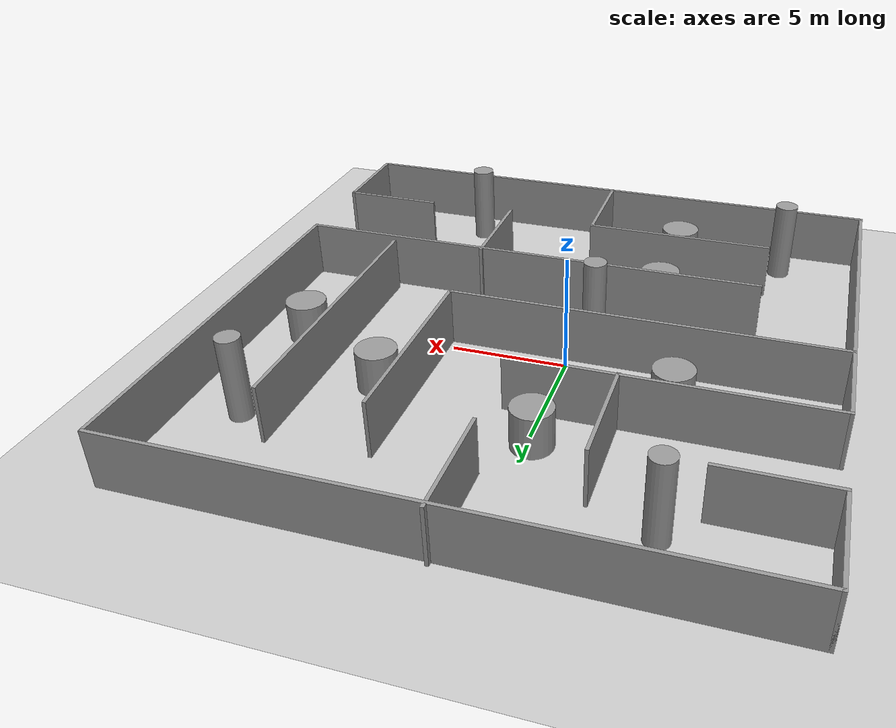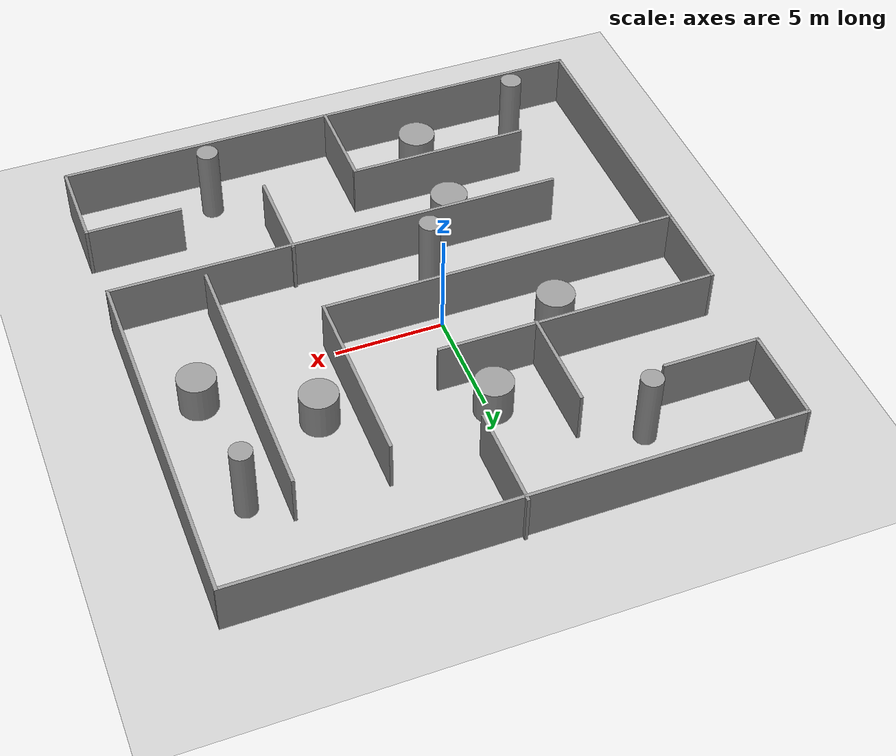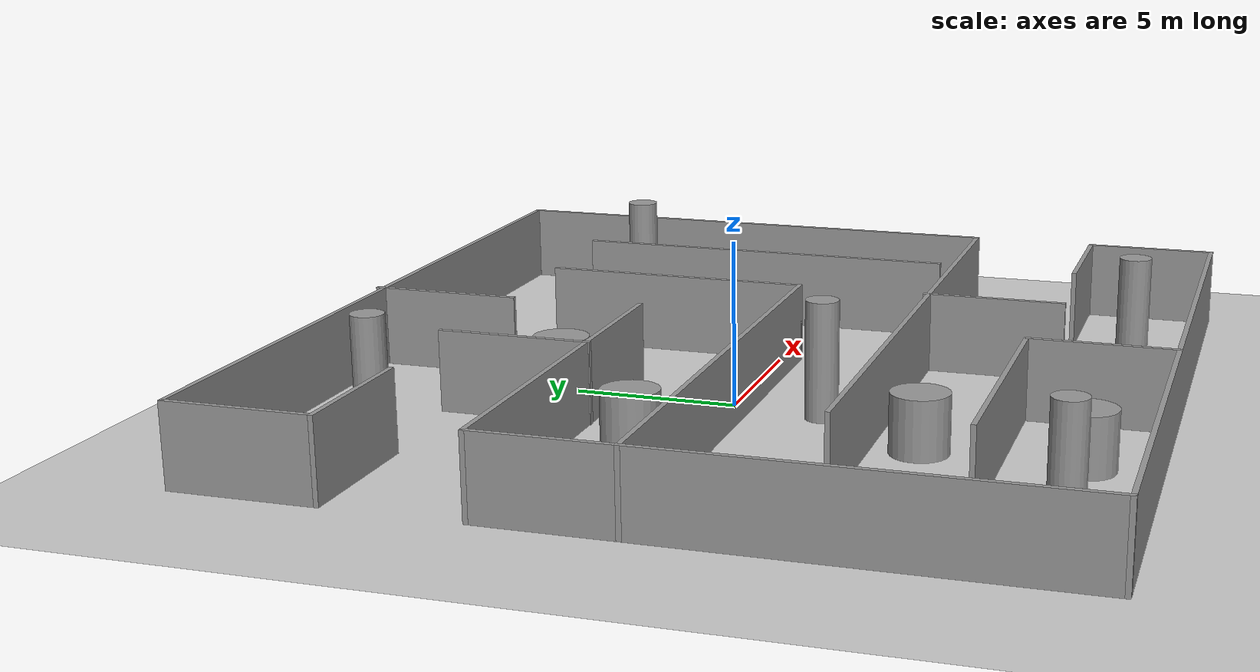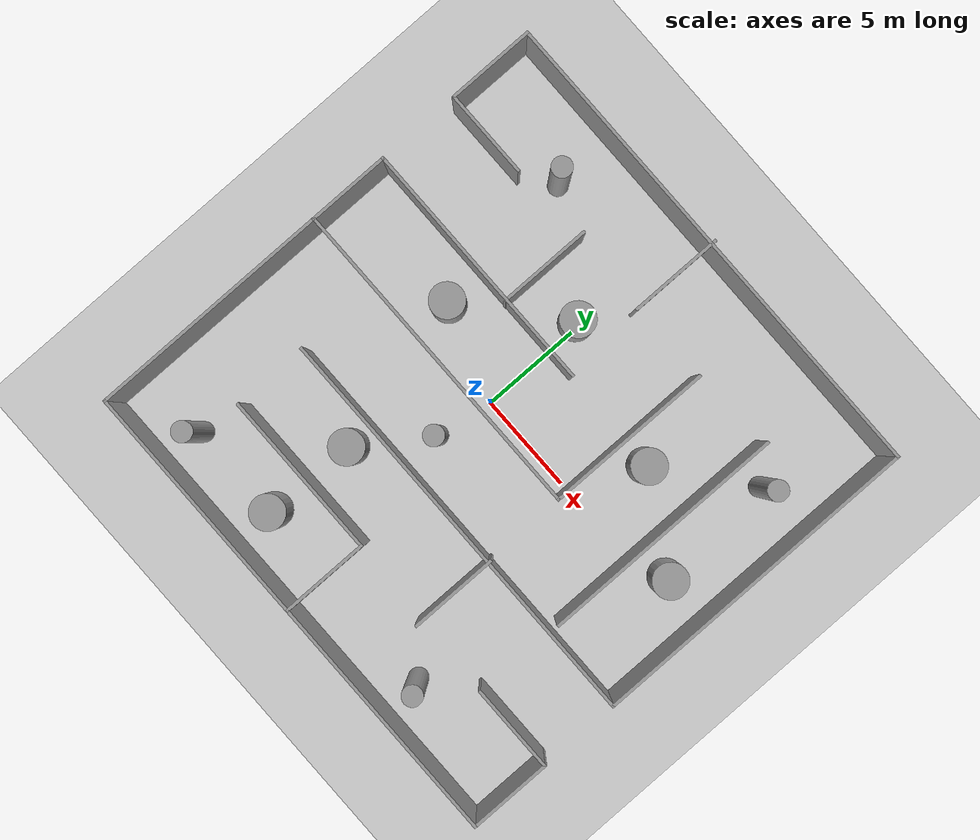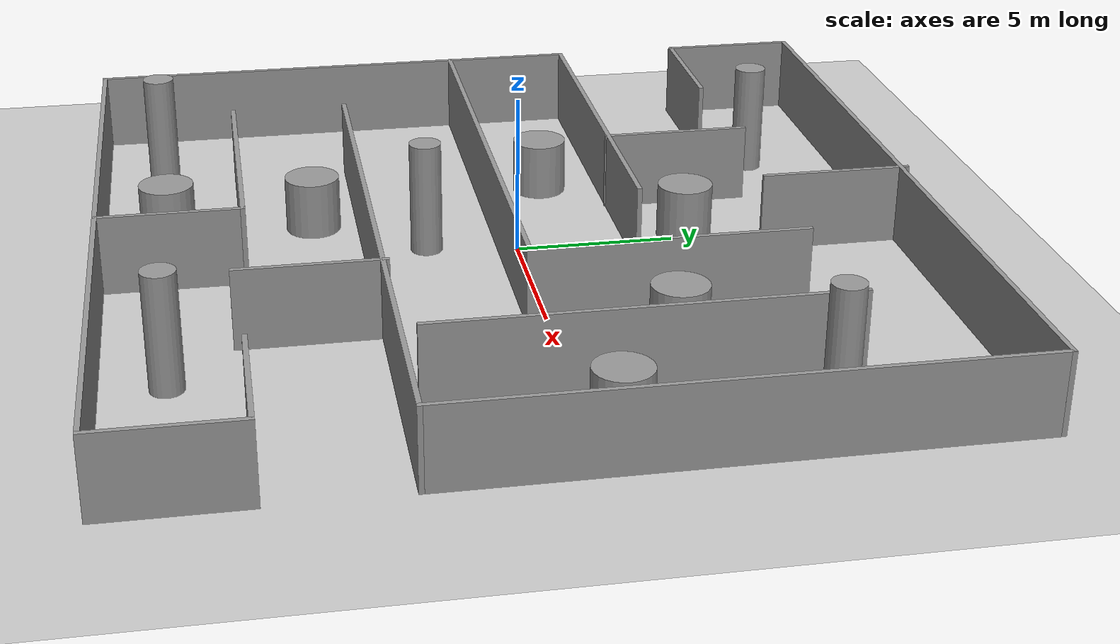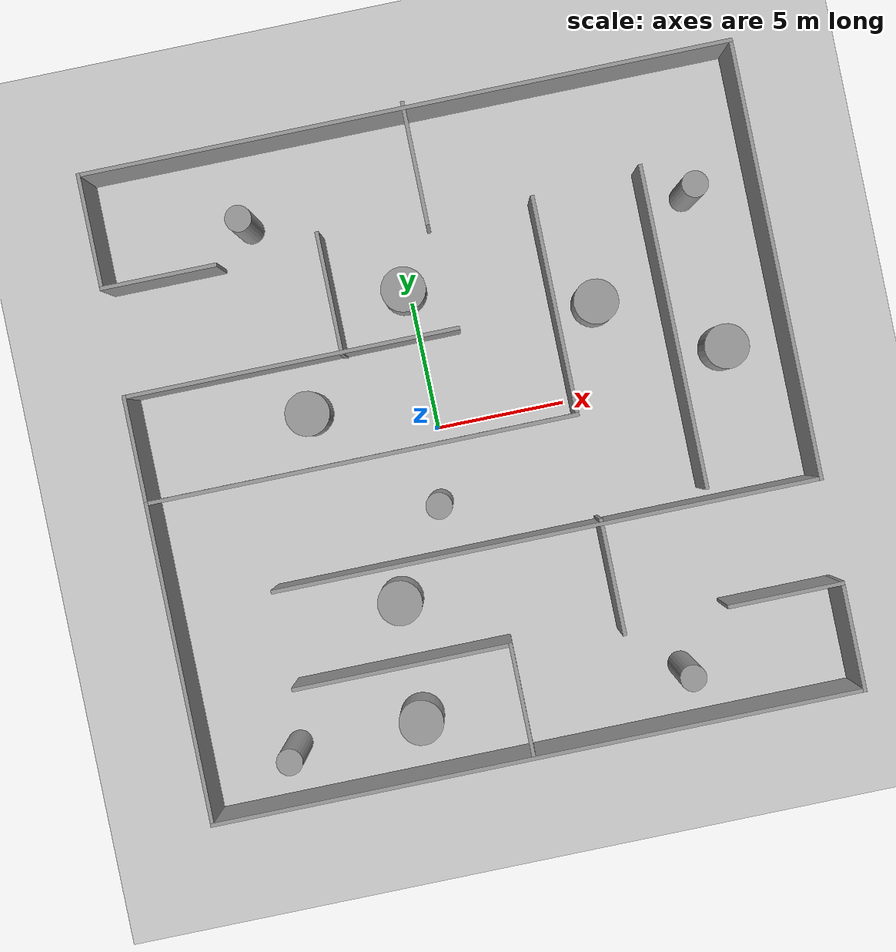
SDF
<sdf version="1.7">
 <world name="default">
  <model name="ground_plane">
   <static>1</static>
   <link name="link">
    <collision name="collision">
     <geometry><plane><normal>0 0 1</normal><size>100 100</size></plane></geometry>
     <surface>
      <contact><collide_bitmask>65535</collide_bitmask></contact>
      <friction><ode><mu>100</mu><mu2>50</mu2></ode></friction>
     </surface>
    </collision>
    <visual name="visual">
     <cast_shadows>0</cast_shadows>
     <geometry><plane><normal>0 0 1</normal><size>100 100</size></plane></geometry>
     <material>
      <script><uri>file://media/materials/scripts/gazebo.material</uri><name>Gazebo/Grey</name></script>
     </material>
    </visual>
   </link>
  </model>
  <light name="sun" type="directional">
   <pose>0 0 10 0 -0 0</pose>
   <diffuse>0.8 0.8 0.8 1</diffuse>
   <specular>0.2 0.2 0.2 1</specular>
   <attenuation>
    <range>1000</range>
    <constant>0.9</constant>
    <linear>0.01</linear>
    <quadratic>0.001</quadratic>
   </attenuation>
   <direction>-0.5 0.1 -0.9</direction>
   <spot><inner_angle>0</inner_angle><outer_angle>0</outer_angle><falloff>0</falloff></spot>
  </light>
  <gravity>0 0 -9.8</gravity>
  <magnetic_field>6e-06 2.3e-05 -4.2e-05</magnetic_field>
  <atmosphere type="adiabatic"/>
  <physics type="ode">
   <max_step_size>0.001</max_step_size>
   <real_time_factor>1</real_time_factor>
   <real_time_update_rate>1000</real_time_update_rate>
  </physics>
  <scene><ambient>0.4 0.4 0.4 1</ambient><background>0.7 0.7 0.7 1</background><shadows>1</shadows></scene>
  <spherical_coordinates>
   <surface_model>EARTH_WGS84</surface_model>
   <latitude_deg>0</latitude_deg>
   <longitude_deg>0</longitude_deg>
   <elevation>0</elevation>
   <heading_deg>0</heading_deg>
  </spherical_coordinates>
  <model name="maze4">
   <pose>1.24134 -0.336764 0 0 -0 0</pose>
   <link name="Wall_186">
    <collision name="Wall_186_Collision">
     <geometry><box><size>4.5 0.15 2.5</size></box></geometry>
     <pose>0 0 1.25 0 -0 0</pose>
    </collision>
    <visual name="Wall_186_Visual">
     <pose>0 0 1.25 0 -0 0</pose>
     <geometry><box><size>4.5 0.15 2.5</size></box></geometry>
     <material>
      <script><uri>file://media/materials/scripts/gazebo.material</uri><name>Gazebo/Grey</name></script>
      <ambient>1 1 1 1</ambient>
     </material>
     <meta><layer>0</layer></meta>
    </visual>
    <pose>-10.3717 8.05219 0 0 -0 3.14159</pose>
   </link>
   <link name="Wall_187">
    <collision name="Wall_187_Collision">
     <geometry><box><size>4.5 0.15 2.5</size></box></geometry>
     <pose>0 0 1.25 0 -0 0</pose>
    </collision>
    <visual name="Wall_187_Visual">
     <pose>0 0 1.25 0 -0 0</pose>
     <geometry><box><size>4.5 0.15 2.5</size></box></geometry>
     <material>
      <script><uri>file://media/materials/scripts/gazebo.material</uri><name>Gazebo/Grey</name></script>
      <ambient>1 1 1 1</ambient>
     </material>
     <meta><layer>0</layer></meta>
    </visual>
    <pose>-12.5467 10.2272 0 0 -0 1.5708</pose>
   </link>
   <link name="Wall_188">
    <collision name="Wall_188_Collision">
     <geometry><box><size>25.25 0.15 2.5</size></box></geometry>
     <pose>0 0 1.25 0 -0 0</pose>
    </collision>
    <visual name="Wall_188_Visual">
     <pose>0 0 1.25 0 -0 0</pose>
     <geometry><box><size>25.25 0.15 2.5</size></box></geometry>
     <material>
      <script><uri>file://media/materials/scripts/gazebo.material</uri><name>Gazebo/Grey</name></script>
      <ambient>1 1 1 1</ambient>
     </material>
     <meta><layer>0</layer></meta>
    </visual>
    <pose>0.003348 12.4022 0 0 -0 0</pose>
   </link>
   <link name="Wall_189">
    <collision name="Wall_189_Collision">
     <geometry><box><size>17 0.15 2.5</size></box></geometry>
     <pose>0 0 1.25 0 -0 0</pose>
    </collision>
    <visual name="Wall_189_Visual">
     <pose>0 0 1.25 0 -0 0</pose>
     <geometry><box><size>17 0.15 2.5</size></box></geometry>
     <material>
      <script><uri>file://media/materials/scripts/gazebo.material</uri><name>Gazebo/Grey</name></script>
      <ambient>1 1 1 1</ambient>
     </material>
     <meta><layer>0</layer></meta>
    </visual>
    <pose>12.5533 3.97719 0 0 -0 -1.5708</pose>
   </link>
   <link name="Wall_190">
    <collision name="Wall_190_Collision">
     <geometry><box><size>21.25 0.15 2.5</size></box></geometry>
     <pose>0 0 1.25 0 -0 0</pose>
    </collision>
    <visual name="Wall_190_Visual">
     <pose>0 0 1.25 0 -0 0</pose>
     <geometry><box><size>21.25 0.15 2.5</size></box></geometry>
     <material>
      <script><uri>file://media/materials/scripts/gazebo.material</uri><name>Gazebo/Grey</name></script>
      <ambient>1 1 1 1</ambient>
     </material>
     <meta><layer>0</layer></meta>
    </visual>
    <pose>2.00335 -4.44781 0 0 -0 3.14159</pose>
   </link>
   <link name="Wall_192">
    <collision name="Wall_192_Collision">
     <geometry><box><size>4.75 0.15 2.5</size></box></geometry>
     <pose>0 0 1.25 0 -0 0</pose>
    </collision>
    <visual name="Wall_192_Visual">
     <pose>0 0 1.25 0 -0 0</pose>
     <geometry><box><size>4.75 0.15 2.5</size></box></geometry>
     <material>
      <script><uri>file://media/materials/scripts/gazebo.material</uri><name>Gazebo/Grey</name></script>
      <ambient>1 1 1 1</ambient>
     </material>
     <meta><layer>0</layer></meta>
    </visual>
    <pose>-0.035179 10.2818 0 0 -0 1.5708</pose>
   </link>
   <link name="Wall_194">
    <collision name="Wall_194_Collision">
     <geometry><box><size>12.5 0.15 2.5</size></box></geometry>
     <pose>0 0 1.25 0 -0 0</pose>
    </collision>
    <visual name="Wall_194_Visual">
     <pose>0 0 1.25 0 -0 0</pose>
     <geometry><box><size>12.5 0.15 2.5</size></box></geometry>
     <material>
      <script><uri>file://media/materials/scripts/gazebo.material</uri><name>Gazebo/Grey</name></script>
      <ambient>1 1 1 1</ambient>
     </material>
     <meta><layer>0</layer></meta>
    </visual>
    <pose>8.26701 2.26641 0 0 -0 1.5708</pose>
   </link>
   <link name="Wall_196">
    <collision name="Wall_196_Collision">
     <geometry><box><size>4.5 0.15 2.5</size></box></geometry>
     <pose>0 0 1.25 0 -0 0</pose>
    </collision>
    <visual name="Wall_196_Visual">
     <pose>0 0 1.25 0 -0 0</pose>
     <geometry><box><size>4.5 0.15 2.5</size></box></geometry>
     <material>
      <script><uri>file://media/materials/scripts/gazebo.material</uri><name>Gazebo/Grey</name></script>
      <ambient>1 1 1 1</ambient>
     </material>
     <meta><layer>0</layer></meta>
    </visual>
    <pose>4.11592 -6.50574 0 0 -0 -1.5708</pose>
   </link>
   <link name="Wall_198">
    <collision name="Wall_198_Collision">
     <geometry><box><size>4.5 0.15 2.5</size></box></geometry>
     <pose>0 0 1.25 0 -0 0</pose>
    </collision>
    <visual name="Wall_198_Visual">
     <pose>0 0 1.25 0 -0 0</pose>
     <geometry><box><size>4.5 0.15 2.5</size></box></geometry>
     <material>
      <script><uri>file://media/materials/scripts/gazebo.material</uri><name>Gazebo/Grey</name></script>
      <ambient>1 1 1 1</ambient>
     </material>
     <meta><layer>0</layer></meta>
    </visual>
    <pose>10.3717 -8.48183 0 0 -0 0</pose>
   </link>
   <link name="Wall_199">
    <collision name="Wall_199_Collision">
     <geometry><box><size>4.25 0.15 2.5</size></box></geometry>
     <pose>0 0 1.25 0 -0 0</pose>
    </collision>
    <visual name="Wall_199_Visual">
     <pose>0 0 1.25 0 -0 0</pose>
     <geometry><box><size>4.25 0.15 2.5</size></box></geometry>
     <material>
      <script><uri>file://media/materials/scripts/gazebo.material</uri><name>Gazebo/Grey</name></script>
      <ambient>1 1 1 1</ambient>
     </material>
     <meta><layer>0</layer></meta>
    </visual>
    <pose>12.5467 -10.5318 0 0 -0 -1.5708</pose>
   </link>
   <link name="Wall_200">
    <collision name="Wall_200_Collision">
     <geometry><box><size>25.25 0.15 2.5</size></box></geometry>
     <pose>0 0 1.25 0 -0 0</pose>
    </collision>
    <visual name="Wall_200_Visual">
     <pose>0 0 1.25 0 -0 0</pose>
     <geometry><box><size>25.25 0.15 2.5</size></box></geometry>
     <material>
      <script><uri>file://media/materials/scripts/gazebo.material</uri><name>Gazebo/Grey</name></script>
      <ambient>1 1 1 1</ambient>
     </material>
     <meta><layer>0</layer></meta>
    </visual>
    <pose>-0.003348 -12.5818 0 0 -0 3.14159</pose>
   </link>
   <link name="Wall_201">
    <collision name="Wall_201_Collision">
     <geometry><box><size>12.5 0.15 2.5</size></box></geometry>
     <pose>0 0 1.25 0 -0 0</pose>
    </collision>
    <visual name="Wall_201_Visual">
     <pose>0 0 1.25 0 -0 0</pose>
     <geometry><box><size>12.5 0.15 2.5</size></box></geometry>
     <material>
      <script><uri>file://media/materials/scripts/gazebo.material</uri><name>Gazebo/Grey</name></script>
      <ambient>1 1 1 1</ambient>
     </material>
     <meta><layer>0</layer></meta>
    </visual>
    <pose>-12.5533 -6.40683 0 0 -0 1.5708</pose>
   </link>
   <link name="Wall_202">
    <collision name="Wall_202_Collision">
     <geometry><box><size>16.75 0.15 2.5</size></box></geometry>
     <pose>0 0 1.25 0 -0 0</pose>
    </collision>
    <visual name="Wall_202_Visual">
     <pose>0 0 1.25 0 -0 0</pose>
     <geometry><box><size>16.75 0.15 2.5</size></box></geometry>
     <material>
      <script><uri>file://media/materials/scripts/gazebo.material</uri><name>Gazebo/Grey</name></script>
      <ambient>1 1 1 1</ambient>
     </material>
     <meta><layer>0</layer></meta>
    </visual>
    <pose>-4.25335 -0.23183 0 0 -0 0</pose>
   </link>
   <link name="Wall_203">
    <collision name="Wall_203_Collision">
     <geometry><box><size>8.5 0.15 2.5</size></box></geometry>
     <pose>0 0 1.25 0 -0 0</pose>
    </collision>
    <visual name="Wall_203_Visual">
     <pose>0 0 1.25 0 -0 0</pose>
     <geometry><box><size>8.5 0.15 2.5</size></box></geometry>
     <material>
      <script><uri>file://media/materials/scripts/gazebo.material</uri><name>Gazebo/Grey</name></script>
      <ambient>1 1 1 1</ambient>
     </material>
     <meta><layer>0</layer></meta>
    </visual>
    <pose>4.04665 3.94317 0 0 -0 1.5708</pose>
   </link>
   <link name="Wall_205">
    <collision name="Wall_205_Collision">
     <geometry><box><size>4.25 0.15 2.5</size></box></geometry>
     <pose>0 0 1.25 0 -0 0</pose>
    </collision>
    <visual name="Wall_205_Visual">
     <pose>0 0 1.25 0 -0 0</pose>
     <geometry><box><size>4.25 0.15 2.5</size></box></geometry>
     <material>
      <script><uri>file://media/materials/scripts/gazebo.material</uri><name>Gazebo/Grey</name></script>
      <ambient>1 1 1 1</ambient>
     </material>
     <meta><layer>0</layer></meta>
    </visual>
    <pose>-12.5533 1.81817 0 0 -0 1.5708</pose>
   </link>
   <link name="Wall_206">
    <collision name="Wall_206_Collision">
     <geometry><box><size>13 0.15 2.5</size></box></geometry>
     <pose>0 0 1.25 0 -0 0</pose>
    </collision>
    <visual name="Wall_206_Visual">
     <pose>0 0 1.25 0 -0 0</pose>
     <geometry><box><size>13 0.15 2.5</size></box></geometry>
     <material>
      <script><uri>file://media/materials/scripts/gazebo.material</uri><name>Gazebo/Grey</name></script>
      <ambient>1 1 1 1</ambient>
     </material>
     <meta><layer>0</layer></meta>
    </visual>
    <pose>-6.12835 3.86817 0 0 -0 0</pose>
   </link>
   <link name="Wall_208">
    <collision name="Wall_208_Collision">
     <geometry><box><size>4.75 0.15 2.5</size></box></geometry>
     <pose>0 0 1.25 0 -0 0</pose>
    </collision>
    <visual name="Wall_208_Visual">
     <pose>0 0 1.25 0 -0 0</pose>
     <geometry><box><size>4.75 0.15 2.5</size></box></geometry>
     <material>
      <script><uri>file://media/materials/scripts/gazebo.material</uri><name>Gazebo/Grey</name></script>
      <ambient>1 1 1 1</ambient>
     </material>
     <meta><layer>0</layer></meta>
    </visual>
    <pose>-4.18627 6.13074 0 0 -0 1.5708</pose>
   </link>
   <link name="Wall_210">
    <collision name="Wall_210_Collision">
     <geometry><box><size>4.5 0.15 2.5</size></box></geometry>
     <pose>0 0 1.25 0 -0 0</pose>
    </collision>
    <visual name="Wall_210_Visual">
     <pose>0 0 1.25 0 -0 0</pose>
     <geometry><box><size>4.5 0.15 2.5</size></box></geometry>
     <material>
      <script><uri>file://media/materials/scripts/gazebo.material</uri><name>Gazebo/Grey</name></script>
      <ambient>1 1 1 1</ambient>
     </material>
     <meta><layer>0</layer></meta>
    </visual>
    <pose>-0.175894 -10.3876 0 0 -0 1.5708</pose>
   </link>
   <link name="Wall_211">
    <collision name="Wall_211_Collision">
     <geometry><box><size>8.5 0.15 2.5</size></box></geometry>
     <pose>0 0 1.25 0 -0 0</pose>
    </collision>
    <visual name="Wall_211_Visual">
     <pose>0 0 1.25 0 -0 0</pose>
     <geometry><box><size>8.5 0.15 2.5</size></box></geometry>
     <material>
      <script><uri>file://media/materials/scripts/gazebo.material</uri><name>Gazebo/Grey</name></script>
      <ambient>1 1 1 1</ambient>
     </material>
     <meta><layer>0</layer></meta>
    </visual>
    <pose>-4.35089 -8.21257 0 0 -0 3.14159</pose>
   </link>
   <static>1</static>
  </model>
  <model name="long_cylinder">
   <link name="link_5">
    <inertial>
     <mass>3.60259</mass>
     <inertia><ixx>4.12154</ixx><ixy>0</ixy><ixz>0</ixz><iyy>4.12154</iyy><iyz>0</iyz><izz>0.450323</izz></inertia>
    </inertial>
    <pose>0 -2e-06 0 0 -0 0</pose>
    <visual name="visual">
     <geometry><cylinder><radius>0.5</radius><length>3.60259</length></cylinder></geometry>
     <material>
      <lighting>1</lighting>
      <script><uri>file://media/materials/scripts/gazebo.material</uri><name>Gazebo/Grey</name></script>
      <shader type="pixel"/>
      <emissive>0 0 0 1</emissive>
     </material>
    </visual>
    <collision name="collision">
     <geometry><cylinder><radius>0.5</radius><length>3.60258</length></cylinder></geometry>
     <surface>
      <friction>
       <ode><mu>1</mu><mu2>1</mu2><fdir1>0 0 0</fdir1><slip1>0</slip1><slip2>0</slip2></ode>
       <torsional>
        <coefficient>1</coefficient>
        <patch_radius>0</patch_radius>
        <surface_radius>0</surface_radius>
        <use_patch_radius>1</use_patch_radius>
        <ode><slip>0</slip></ode>
       </torsional>
      </friction>
      <bounce><restitution_coefficient>0</restitution_coefficient><threshold>1e+06</threshold></bounce>
      <contact>
       <collide_without_contact>0</collide_without_contact>
       <collide_without_contact_bitmask>1</collide_without_contact_bitmask>
       <collide_bitmask>1</collide_bitmask>
       <ode>
        <soft_cfm>0</soft_cfm>
        <soft_erp>0.2</soft_erp>
        <kp>1e+13</kp>
        <kd>1</kd>
        <max_vel>0.01</max_vel>
        <min_depth>0</min_depth>
       </ode>
       <bullet>
        <split_impulse>1</split_impulse>
        <split_impulse_penetration_threshold>-0.01</split_impulse_penetration_threshold>
        <soft_cfm>0</soft_cfm>
        <soft_erp>0.2</soft_erp>
        <kp>1e+13</kp>
        <kd>1</kd>
       </bullet>
      </contact>
     </surface>
    </collision>
   </link>
   <static>0</static>
   <pose>7.43658 -10.968 1.80129 0 -0 0</pose>
  </model>
  <model name="big_cylinder">
   <link name="link_6">
    <inertial>
     <mass>5.40188</mass>
     <inertia><ixx>2.45932</ixx><ixy>0</ixy><ixz>0</ixz><iyy>2.45932</iyy><iyz>0</iyz><izz>2.03968</izz></inertia>
    </inertial>
    <pose>3e-06 3e-06 0 0 -0 0</pose>
    <visual name="visual">
     <geometry><cylinder><radius>0.869008</radius><length>1.78822</length></cylinder></geometry>
     <material>
      <lighting>1</lighting>
      <script><uri>file://media/materials/scripts/gazebo.material</uri><name>Gazebo/Grey</name></script>
      <shader type="pixel"/>
     </material>
    </visual>
    <collision name="collision">
     <geometry><cylinder><radius>0.869008</radius><length>1.78822</length></cylinder></geometry>
     <surface>
      <friction>
       <ode><mu>1</mu><mu2>1</mu2><fdir1>0 0 0</fdir1><slip1>0</slip1><slip2>0</slip2></ode>
       <torsional>
        <coefficient>1</coefficient>
        <patch_radius>0</patch_radius>
        <surface_radius>0</surface_radius>
        <use_patch_radius>1</use_patch_radius>
        <ode><slip>0</slip></ode>
       </torsional>
      </friction>
      <bounce><restitution_coefficient>0</restitution_coefficient><threshold>1e+06</threshold></bounce>
      <contact>
       <collide_without_contact>0</collide_without_contact>
       <collide_without_contact_bitmask>1</collide_without_contact_bitmask>
       <collide_bitmask>1</collide_bitmask>
       <ode>
        <soft_cfm>0</soft_cfm>
        <soft_erp>0.2</soft_erp>
        <kp>1e+13</kp>
        <kd>1</kd>
        <max_vel>0.01</max_vel>
        <min_depth>0</min_depth>
       </ode>
       <bullet>
        <split_impulse>1</split_impulse>
        <split_impulse_penetration_threshold>-0.01</split_impulse_penetration_threshold>
        <soft_cfm>0</soft_cfm>
        <soft_erp>0.2</soft_erp>
        <kp>1e+13</kp>
        <kd>1</kd>
       </bullet>
      </contact>
     </surface>
    </collision>
   </link>
   <static>0</static>
   <pose>-2.87459 -10.8687 0.89411 0 -0 0</pose>
  </model>
  <model name="long_cylinder_0">
   <link name="link_5">
    <inertial>
     <mass>3.60259</mass>
     <inertia><ixx>4.12154</ixx><ixy>0</ixy><ixz>0</ixz><iyy>4.12154</iyy><iyz>0</iyz><izz>0.450323</izz></inertia>
    </inertial>
    <pose>0 -2e-06 0 0 -0 0</pose>
    <visual name="visual">
     <geometry><cylinder><radius>0.5</radius><length>3.60259</length></cylinder></geometry>
     <material>
      <lighting>1</lighting>
      <script><uri>file://media/materials/scripts/gazebo.material</uri><name>Gazebo/Grey</name></script>
      <shader type="pixel"/>
      <emissive>0 0 0 1</emissive>
     </material>
    </visual>
    <collision name="collision">
     <geometry><cylinder><radius>0.5</radius><length>3.60258</length></cylinder></geometry>
     <surface>
      <friction>
       <ode><mu>1</mu><mu2>1</mu2><fdir1>0 0 0</fdir1><slip1>0</slip1><slip2>0</slip2></ode>
       <torsional>
        <coefficient>1</coefficient>
        <patch_radius>0</patch_radius>
        <surface_radius>0</surface_radius>
        <use_patch_radius>1</use_patch_radius>
        <ode><slip>0</slip></ode>
       </torsional>
      </friction>
      <bounce><restitution_coefficient>0</restitution_coefficient><threshold>1e+06</threshold></bounce>
      <contact>
       <collide_without_contact>0</collide_without_contact>
       <collide_without_contact_bitmask>1</collide_without_contact_bitmask>
       <collide_bitmask>1</collide_bitmask>
       <ode>
        <soft_cfm>0</soft_cfm>
        <soft_erp>0.2</soft_erp>
        <kp>1e+13</kp>
        <kd>1</kd>
        <max_vel>0.01</max_vel>
        <min_depth>0</min_depth>
       </ode>
       <bullet>
        <split_impulse>1</split_impulse>
        <split_impulse_penetration_threshold>-0.01</split_impulse_penetration_threshold>
        <soft_cfm>0</soft_cfm>
        <soft_erp>0.2</soft_erp>
        <kp>1e+13</kp>
        <kd>1</kd>
       </bullet>
      </contact>
     </surface>
    </collision>
   </link>
   <static>0</static>
   <pose>-7.80702 -10.9837 1.80129 0 -0 0</pose>
  </model>
  <model name="big_cylinder_0">
   <link name="link_6">
    <inertial>
     <mass>5.40188</mass>
     <inertia><ixx>2.45932</ixx><ixy>0</ixy><ixz>0</ixz><iyy>2.45932</iyy><iyz>0</iyz><izz>2.03968</izz></inertia>
    </inertial>
    <pose>3e-06 3e-06 0 0 -0 0</pose>
    <visual name="visual">
     <geometry><cylinder><radius>0.869008</radius><length>1.78822</length></cylinder></geometry>
     <material>
      <lighting>1</lighting>
      <script><uri>file://media/materials/scripts/gazebo.material</uri><name>Gazebo/Grey</name></script>
      <shader type="pixel"/>
     </material>
    </visual>
    <collision name="collision">
     <geometry><cylinder><radius>0.869008</radius><length>1.78822</length></cylinder></geometry>
     <surface>
      <friction>
       <ode><mu>1</mu><mu2>1</mu2><fdir1>0 0 0</fdir1><slip1>0</slip1><slip2>0</slip2></ode>
       <torsional>
        <coefficient>1</coefficient>
        <patch_radius>0</patch_radius>
        <surface_radius>0</surface_radius>
        <use_patch_radius>1</use_patch_radius>
        <ode><slip>0</slip></ode>
       </torsional>
      </friction>
      <bounce><restitution_coefficient>0</restitution_coefficient><threshold>1e+06</threshold></bounce>
      <contact>
       <collide_without_contact>0</collide_without_contact>
       <collide_without_contact_bitmask>1</collide_without_contact_bitmask>
       <collide_bitmask>1</collide_bitmask>
       <ode>
        <soft_cfm>0</soft_cfm>
        <soft_erp>0.2</soft_erp>
        <kp>1e+13</kp>
        <kd>1</kd>
        <max_vel>0.01</max_vel>
        <min_depth>0</min_depth>
       </ode>
       <bullet>
        <split_impulse>1</split_impulse>
        <split_impulse_penetration_threshold>-0.01</split_impulse_penetration_threshold>
        <soft_cfm>0</soft_cfm>
        <soft_erp>0.2</soft_erp>
        <kp>1e+13</kp>
        <kd>1</kd>
       </bullet>
      </contact>
     </surface>
    </collision>
   </link>
   <static>0</static>
   <pose>-2.74915 -6.24069 0.89411 0 -0 0</pose>
  </model>
  <model name="long_cylinder_1">
   <link name="link_5">
    <inertial>
     <mass>3.60259</mass>
     <inertia><ixx>4.12154</ixx><ixy>0</ixy><ixz>0</ixz><iyy>4.12154</iyy><iyz>0</iyz><izz>0.450323</izz></inertia>
    </inertial>
    <pose>0 -2e-06 0 0 -0 0</pose>
    <visual name="visual">
     <geometry><cylinder><radius>0.5</radius><length>3.60259</length></cylinder></geometry>
     <material>
      <lighting>1</lighting>
      <script><uri>file://media/materials/scripts/gazebo.material</uri><name>Gazebo/Grey</name></script>
      <shader type="pixel"/>
      <emissive>0 0 0 1</emissive>
     </material>
    </visual>
    <collision name="collision">
     <geometry><cylinder><radius>0.5</radius><length>3.60258</length></cylinder></geometry>
     <surface>
      <friction>
       <ode><mu>1</mu><mu2>1</mu2><fdir1>0 0 0</fdir1><slip1>0</slip1><slip2>0</slip2></ode>
       <torsional>
        <coefficient>1</coefficient>
        <patch_radius>0</patch_radius>
        <surface_radius>0</surface_radius>
        <use_patch_radius>1</use_patch_radius>
        <ode><slip>0</slip></ode>
       </torsional>
      </friction>
      <bounce><restitution_coefficient>0</restitution_coefficient><threshold>1e+06</threshold></bounce>
      <contact>
       <collide_without_contact>0</collide_without_contact>
       <collide_without_contact_bitmask>1</collide_without_contact_bitmask>
       <collide_bitmask>1</collide_bitmask>
       <ode>
        <soft_cfm>0</soft_cfm>
        <soft_erp>0.2</soft_erp>
        <kp>1e+13</kp>
        <kd>1</kd>
        <max_vel>0.01</max_vel>
        <min_depth>0</min_depth>
       </ode>
       <bullet>
        <split_impulse>1</split_impulse>
        <split_impulse_penetration_threshold>-0.01</split_impulse_penetration_threshold>
        <soft_cfm>0</soft_cfm>
        <soft_erp>0.2</soft_erp>
        <kp>1e+13</kp>
        <kd>1</kd>
       </bullet>
      </contact>
     </surface>
    </collision>
   </link>
   <static>0</static>
   <pose>-0.478336 -2.83491 1.80129 0 -0 0</pose>
  </model>
  <model name="big_cylinder_1">
   <link name="link_6">
    <inertial>
     <mass>5.40188</mass>
     <inertia><ixx>2.45932</ixx><ixy>0</ixy><ixz>0</ixz><iyy>2.45932</iyy><iyz>0</iyz><izz>2.03968</izz></inertia>
    </inertial>
    <pose>3e-06 3e-06 0 0 -0 0</pose>
    <visual name="visual">
     <geometry><cylinder><radius>0.869008</radius><length>1.78822</length></cylinder></geometry>
     <material>
      <lighting>1</lighting>
      <script><uri>file://media/materials/scripts/gazebo.material</uri><name>Gazebo/Grey</name></script>
      <shader type="pixel"/>
     </material>
    </visual>
    <collision name="collision">
     <geometry><cylinder><radius>0.869008</radius><length>1.78822</length></cylinder></geometry>
     <surface>
      <friction>
       <ode><mu>1</mu><mu2>1</mu2><fdir1>0 0 0</fdir1><slip1>0</slip1><slip2>0</slip2></ode>
       <torsional>
        <coefficient>1</coefficient>
        <patch_radius>0</patch_radius>
        <surface_radius>0</surface_radius>
        <use_patch_radius>1</use_patch_radius>
        <ode><slip>0</slip></ode>
       </torsional>
      </friction>
      <bounce><restitution_coefficient>0</restitution_coefficient><threshold>1e+06</threshold></bounce>
      <contact>
       <collide_without_contact>0</collide_without_contact>
       <collide_without_contact_bitmask>1</collide_without_contact_bitmask>
       <collide_bitmask>1</collide_bitmask>
       <ode>
        <soft_cfm>0</soft_cfm>
        <soft_erp>0.2</soft_erp>
        <kp>1e+13</kp>
        <kd>1</kd>
        <max_vel>0.01</max_vel>
        <min_depth>0</min_depth>
       </ode>
       <bullet>
        <split_impulse>1</split_impulse>
        <split_impulse_penetration_threshold>-0.01</split_impulse_penetration_threshold>
        <soft_cfm>0</soft_cfm>
        <soft_erp>0.2</soft_erp>
        <kp>1e+13</kp>
        <kd>1</kd>
       </bullet>
      </contact>
     </surface>
    </collision>
   </link>
   <static>0</static>
   <pose>6.91443 3.50522 0.89411 0 -0 0</pose>
  </model>
  <model name="long_cylinder_2">
   <link name="link_5">
    <inertial>
     <mass>3.60259</mass>
     <inertia><ixx>4.12154</ixx><ixy>0</ixy><ixz>0</ixz><iyy>4.12154</iyy><iyz>0</iyz><izz>0.450323</izz></inertia>
    </inertial>
    <pose>0 -2e-06 0 0 -0 0</pose>
    <visual name="visual">
     <geometry><cylinder><radius>0.5</radius><length>3.60259</length></cylinder></geometry>
     <material>
      <lighting>1</lighting>
      <script><uri>file://media/materials/scripts/gazebo.material</uri><name>Gazebo/Grey</name></script>
      <shader type="pixel"/>
      <emissive>0 0 0 1</emissive>
     </material>
    </visual>
    <collision name="collision">
     <geometry><cylinder><radius>0.5</radius><length>3.60258</length></cylinder></geometry>
     <surface>
      <friction>
       <ode><mu>1</mu><mu2>1</mu2><fdir1>0 0 0</fdir1><slip1>0</slip1><slip2>0</slip2></ode>
       <torsional>
        <coefficient>1</coefficient>
        <patch_radius>0</patch_radius>
        <surface_radius>0</surface_radius>
        <use_patch_radius>1</use_patch_radius>
        <ode><slip>0</slip></ode>
       </torsional>
      </friction>
      <bounce><restitution_coefficient>0</restitution_coefficient><threshold>1e+06</threshold></bounce>
      <contact>
       <collide_without_contact>0</collide_without_contact>
       <collide_without_contact_bitmask>1</collide_without_contact_bitmask>
       <collide_bitmask>1</collide_bitmask>
       <ode>
        <soft_cfm>0</soft_cfm>
        <soft_erp>0.2</soft_erp>
        <kp>1e+13</kp>
        <kd>1</kd>
        <max_vel>0.01</max_vel>
        <min_depth>0</min_depth>
       </ode>
       <bullet>
        <split_impulse>1</split_impulse>
        <split_impulse_penetration_threshold>-0.01</split_impulse_penetration_threshold>
        <soft_cfm>0</soft_cfm>
        <soft_erp>0.2</soft_erp>
        <kp>1e+13</kp>
        <kd>1</kd>
       </bullet>
      </contact>
     </surface>
    </collision>
   </link>
   <static>0</static>
   <pose>11.1922 6.88494 1.80129 0 -0 0</pose>
  </model>
  <model name="big_cylinder_2">
   <link name="link_6">
    <inertial>
     <mass>5.40188</mass>
     <inertia><ixx>2.45932</ixx><ixy>0</ixy><ixz>0</ixz><iyy>2.45932</iyy><iyz>0</iyz><izz>2.03968</izz></inertia>
    </inertial>
    <pose>3e-06 3e-06 0 0 -0 0</pose>
    <visual name="visual">
     <geometry><cylinder><radius>0.869008</radius><length>1.78822</length></cylinder></geometry>
     <material>
      <lighting>1</lighting>
      <script><uri>file://media/materials/scripts/gazebo.material</uri><name>Gazebo/Grey</name></script>
      <shader type="pixel"/>
     </material>
    </visual>
    <collision name="collision">
     <geometry><cylinder><radius>0.869008</radius><length>1.78822</length></cylinder></geometry>
     <surface>
      <friction>
       <ode><mu>1</mu><mu2>1</mu2><fdir1>0 0 0</fdir1><slip1>0</slip1><slip2>0</slip2></ode>
       <torsional>
        <coefficient>1</coefficient>
        <patch_radius>0</patch_radius>
        <surface_radius>0</surface_radius>
        <use_patch_radius>1</use_patch_radius>
        <ode><slip>0</slip></ode>
       </torsional>
      </friction>
      <bounce><restitution_coefficient>0</restitution_coefficient><threshold>1e+06</threshold></bounce>
      <contact>
       <collide_without_contact>0</collide_without_contact>
       <collide_without_contact_bitmask>1</collide_without_contact_bitmask>
       <collide_bitmask>1</collide_bitmask>
       <ode>
        <soft_cfm>0</soft_cfm>
        <soft_erp>0.2</soft_erp>
        <kp>1e+13</kp>
        <kd>1</kd>
        <max_vel>0.01</max_vel>
        <min_depth>0</min_depth>
       </ode>
       <bullet>
        <split_impulse>1</split_impulse>
        <split_impulse_penetration_threshold>-0.01</split_impulse_penetration_threshold>
        <soft_cfm>0</soft_cfm>
        <soft_erp>0.2</soft_erp>
        <kp>1e+13</kp>
        <kd>1</kd>
       </bullet>
      </contact>
     </surface>
    </collision>
   </link>
   <static>0</static>
   <pose>11.4512 0.825512 0.89411 0 -0 0</pose>
  </model>
  <model name="big_cylinder_3">
   <link name="link_6">
    <inertial>
     <mass>5.40188</mass>
     <inertia><ixx>2.45932</ixx><ixy>0</ixy><ixz>0</ixz><iyy>2.45932</iyy><iyz>0</iyz><izz>2.03968</izz></inertia>
    </inertial>
    <pose>3e-06 3e-06 0 0 -0 0</pose>
    <visual name="visual">
     <geometry><cylinder><radius>0.869008</radius><length>1.78822</length></cylinder></geometry>
     <material>
      <lighting>1</lighting>
      <script><uri>file://media/materials/scripts/gazebo.material</uri><name>Gazebo/Grey</name></script>
      <shader type="pixel"/>
     </material>
    </visual>
    <collision name="collision">
     <geometry><cylinder><radius>0.869008</radius><length>1.78822</length></cylinder></geometry>
     <surface>
      <friction>
       <ode><mu>1</mu><mu2>1</mu2><fdir1>0 0 0</fdir1><slip1>0</slip1><slip2>0</slip2></ode>
       <torsional>
        <coefficient>1</coefficient>
        <patch_radius>0</patch_radius>
        <surface_radius>0</surface_radius>
        <use_patch_radius>1</use_patch_radius>
        <ode><slip>0</slip></ode>
       </torsional>
      </friction>
      <bounce><restitution_coefficient>0</restitution_coefficient><threshold>1e+06</threshold></bounce>
      <contact>
       <collide_without_contact>0</collide_without_contact>
       <collide_without_contact_bitmask>1</collide_without_contact_bitmask>
       <collide_bitmask>1</collide_bitmask>
       <ode>
        <soft_cfm>0</soft_cfm>
        <soft_erp>0.2</soft_erp>
        <kp>1e+13</kp>
        <kd>1</kd>
        <max_vel>0.01</max_vel>
        <min_depth>0</min_depth>
       </ode>
       <bullet>
        <split_impulse>1</split_impulse>
        <split_impulse_penetration_threshold>-0.01</split_impulse_penetration_threshold>
        <soft_cfm>0</soft_cfm>
        <soft_erp>0.2</soft_erp>
        <kp>1e+13</kp>
        <kd>1</kd>
       </bullet>
      </contact>
     </surface>
    </collision>
   </link>
   <static>0</static>
   <pose>-0.202376 5.44842 0.89411 0 -0 0</pose>
  </model>
  <model name="big_cylinder_4">
   <link name="link_6">
    <inertial>
     <mass>5.40188</mass>
     <inertia><ixx>2.45932</ixx><ixy>0</ixy><ixz>0</ixz><iyy>2.45932</iyy><iyz>0</iyz><izz>2.03968</izz></inertia>
    </inertial>
    <pose>3e-06 3e-06 0 0 -0 0</pose>
    <visual name="visual">
     <geometry><cylinder><radius>0.869008</radius><length>1.78822</length></cylinder></geometry>
     <material>
      <lighting>1</lighting>
      <script><uri>file://media/materials/scripts/gazebo.material</uri><name>Gazebo/Grey</name></script>
      <shader type="pixel"/>
     </material>
    </visual>
    <collision name="collision">
     <geometry><cylinder><radius>0.869008</radius><length>1.78822</length></cylinder></geometry>
     <surface>
      <friction>
       <ode><mu>1</mu><mu2>1</mu2><fdir1>0 0 0</fdir1><slip1>0</slip1><slip2>0</slip2></ode>
       <torsional>
        <coefficient>1</coefficient>
        <patch_radius>0</patch_radius>
        <surface_radius>0</surface_radius>
        <use_patch_radius>1</use_patch_radius>
        <ode><slip>0</slip></ode>
       </torsional>
      </friction>
      <bounce><restitution_coefficient>0</restitution_coefficient><threshold>1e+06</threshold></bounce>
      <contact>
       <collide_without_contact>0</collide_without_contact>
       <collide_without_contact_bitmask>1</collide_without_contact_bitmask>
       <collide_bitmask>1</collide_bitmask>
       <ode>
        <soft_cfm>0</soft_cfm>
        <soft_erp>0.2</soft_erp>
        <kp>1e+13</kp>
        <kd>1</kd>
        <max_vel>0.01</max_vel>
        <min_depth>0</min_depth>
       </ode>
       <bullet>
        <split_impulse>1</split_impulse>
        <split_impulse_penetration_threshold>-0.01</split_impulse_penetration_threshold>
        <soft_cfm>0</soft_cfm>
        <soft_erp>0.2</soft_erp>
        <kp>1e+13</kp>
        <kd>1</kd>
       </bullet>
      </contact>
     </surface>
    </collision>
   </link>
   <static>0</static>
   <pose>-4.74763 1.54588 0.89411 0 -0 0</pose>
  </model>
  <model name="long_cylinder_3">
   <link name="link_5">
    <inertial>
     <mass>3.60259</mass>
     <inertia><ixx>4.12154</ixx><ixy>0</ixy><ixz>0</ixz><iyy>4.12154</iyy><iyz>0</iyz><izz>0.450323</izz></inertia>
    </inertial>
    <pose>0 -2e-06 0 0 -0 0</pose>
    <visual name="visual">
     <geometry><cylinder><radius>0.5</radius><length>3.60259</length></cylinder></geometry>
     <material>
      <lighting>1</lighting>
      <script><uri>file://media/materials/scripts/gazebo.material</uri><name>Gazebo/Grey</name></script>
      <shader type="pixel"/>
      <emissive>0 0 0 1</emissive>
     </material>
    </visual>
    <collision name="collision">
     <geometry><cylinder><radius>0.5</radius><length>3.60258</length></cylinder></geometry>
     <surface>
      <friction>
       <ode><mu>1</mu><mu2>1</mu2><fdir1>0 0 0</fdir1><slip1>0</slip1><slip2>0</slip2></ode>
       <torsional>
        <coefficient>1</coefficient>
        <patch_radius>0</patch_radius>
        <surface_radius>0</surface_radius>
        <use_patch_radius>1</use_patch_radius>
        <ode><slip>0</slip></ode>
       </torsional>
      </friction>
      <bounce><restitution_coefficient>0</restitution_coefficient><threshold>1e+06</threshold></bounce>
      <contact>
       <collide_without_contact>0</collide_without_contact>
       <collide_without_contact_bitmask>1</collide_without_contact_bitmask>
       <collide_bitmask>1</collide_bitmask>
       <ode>
        <soft_cfm>0</soft_cfm>
        <soft_erp>0.2</soft_erp>
        <kp>1e+13</kp>
        <kd>1</kd>
        <max_vel>0.01</max_vel>
        <min_depth>0</min_depth>
       </ode>
       <bullet>
        <split_impulse>1</split_impulse>
        <split_impulse_penetration_threshold>-0.01</split_impulse_penetration_threshold>
        <soft_cfm>0</soft_cfm>
        <soft_erp>0.2</soft_erp>
        <kp>1e+13</kp>
        <kd>1</kd>
       </bullet>
      </contact>
     </surface>
    </collision>
   </link>
   <static>0</static>
   <pose>-5.60309 9.06115 1.80129 0 -0 0</pose>
  </model>
 </world>
</sdf>
